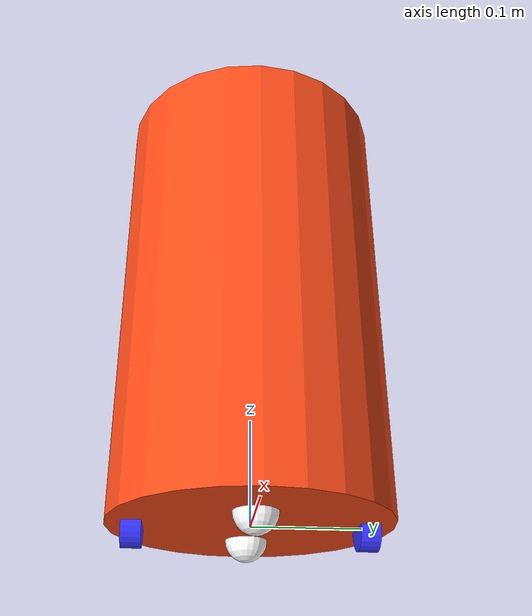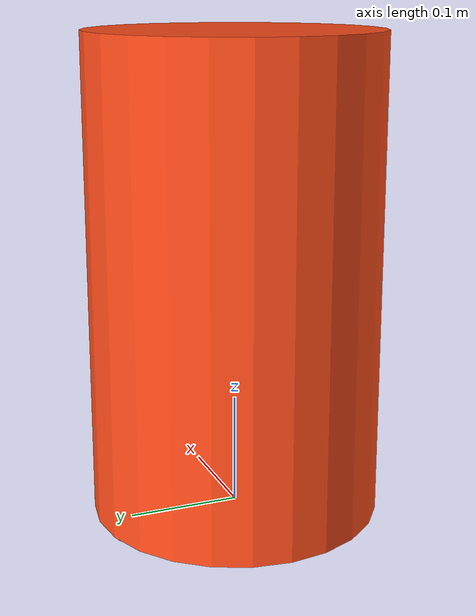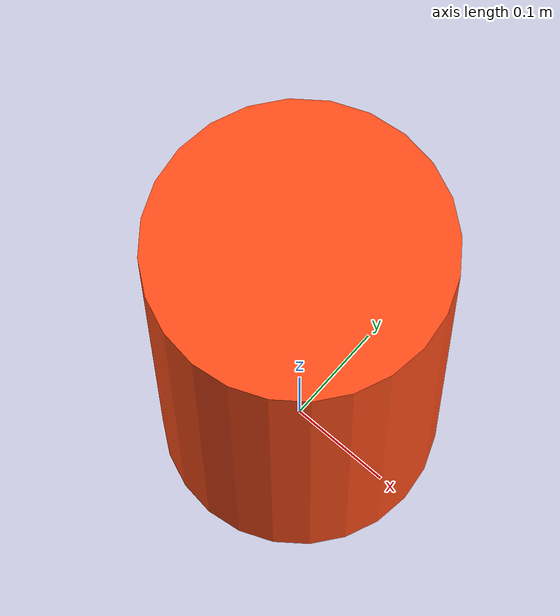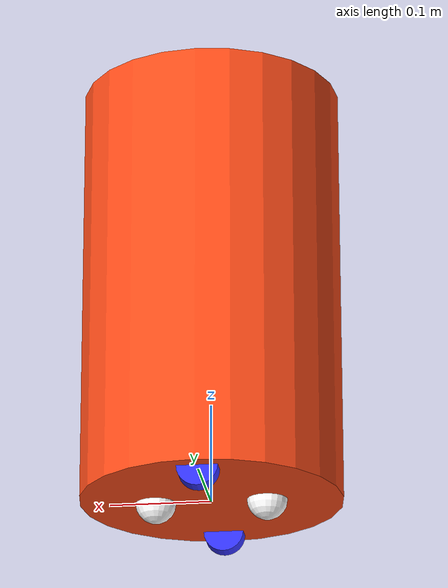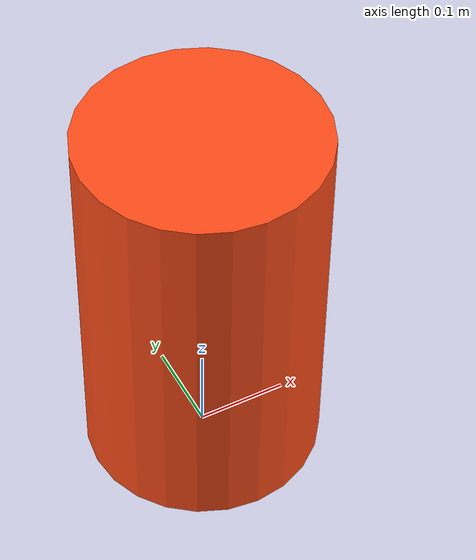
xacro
<?xml version="1.0"?>
<robot xmlns:xacro="http://www.ros.org/wiki/xacro">

    <xacro:include filename="inertial_macros.xacro"/>

    <xacro:property name="robot_height" value="0.43"/>
    <xacro:property name="robot_radius" value="0.13"/> <!-- Half of the diameter -->
    <xacro:property name="chassis_mass" value="4.178"/>
    <xacro:property name="wheel_distance" value="0.21"/> <!-- Distance between wheels -->

    <xacro:property name="wheel_radius" value="0.020"/> <!-- Wheel radius -->
    <xacro:property name="wheel_width" value="0.018"/> <!-- Wheel width -->
    <xacro:property name="wheel_mass" value="0.0194"/> <!-- Wheel mass -->

    <xacro:property name="chassis_wheel_radius" value="${wheel_radius}"/> <!-- Chassis wheel radius -->
    <xacro:property name="chassis_wheel_mass" value="0.01"/> <!-- Chassis wheel mass -->
    <xacro:property name="chassis_wheel_distance" value="0.11"/> <!-- Distance between chassis wheels -->
    <material name="white">
        <color rgba="1 1 1 1"/>
    </material>

    <material name="orange">
        <color rgba="1 0.3 0.1 1"/>
    </material>

    <material name="blue">
        <color rgba="0.2 0.2 1 1"/>
    </material>

    <material name="black">
        <color rgba="0 0 0 1"/>
    </material>

    <material name="red">
        <color rgba="1 0 0 1"/>
    </material>

    <!-- BASE LINK -->

    <link name="base_link">
    </link>

    <!-- BASE_FOOTPRINT LINK -->

    <joint name="base_footprint_joint" type="fixed">
        <parent link="base_link"/>
        <child link="base_footprint"/>
        <origin xyz="0 0 0" rpy="0 0 0"/>
    </joint>

    <link name="base_footprint">
    </link>

    <!-- CHASSIS LINK -->

    <joint name="chassis_joint" type="fixed">
        <parent link="base_link"/>
        <child link="chassis"/>
        <origin xyz="0 0 0"/>
    </joint>

    <link name="chassis">
        <visual>
            <origin xyz="0 0 ${robot_height/2}" rpy="0 0 0"/>
            <geometry>
                <cylinder radius="${robot_radius}" length="${robot_height}"/>
            </geometry>
            <material name="orange"/>
        </visual>
        <collision>
            <origin xyz="0 0 ${robot_height/2}" rpy="0 0 0"/>
            <geometry>
                <cylinder radius="${robot_radius}" length="${robot_height}"/>
            </geometry>
        </collision>
        <xacro:inertial_cylinder mass="${chassis_mass}" length="${robot_height}" radius="${robot_radius}">
            <origin xyz="0 0 ${robot_height/2}" rpy="0 0 0"/>
        </xacro:inertial_cylinder>
    </link>

    <!-- LEFT WHEEL LINK -->

    <joint name="left_wheel_joint" type="continuous">
        <parent link="base_link"/>
        <child link="left_wheel"/>
        <origin xyz="0 ${wheel_distance/2} 0" rpy="-${pi/2} 0 0"/>
        <axis xyz="0 0 1"/>
    </joint>

    <link name="left_wheel">
        <visual>
            <geometry>
                <cylinder radius="${wheel_radius}" length="${wheel_width}"/>
            </geometry>
            <material name="blue"/>
        </visual>
        <collision>
            <geometry>
                <cylinder radius="${wheel_radius}" length="${wheel_width}"/>
            </geometry>
        </collision>
        <xacro:inertial_cylinder mass="${wheel_mass}" length="${wheel_width}" radius="${wheel_radius}">
            <origin xyz="0 0 0" rpy="0 0 0"/>
        </xacro:inertial_cylinder>
    </link>

    <!-- RIGHT WHEEL LINK -->

    <joint name="right_wheel_joint" type="continuous">
        <parent link="base_link"/>
        <child link="right_wheel"/>
        <origin xyz="0 ${-wheel_distance/2} 0" rpy="${pi/2} 0 0" />
        <axis xyz="0 0 1"/>
    </joint>

    <link name="right_wheel">
        <visual>
            <geometry>
                <cylinder radius="${wheel_radius}" length="${wheel_width}"/>
            </geometry>
            <material name="blue"/>
        </visual>
        <collision>
            <geometry>
                <cylinder radius="${wheel_radius}" length="${wheel_width}"/>
            </geometry>
        </collision>
        <xacro:inertial_cylinder mass="${wheel_mass}" length="${wheel_width}" radius="${wheel_radius}">
            <origin xyz="0 0 0" rpy="0 0 0"/>
        </xacro:inertial_cylinder>
    </link>

    <!-- CHASSIS WHEELS -->

     <!-- FRONT CHASSIS WHEEL LINK -->

    <joint name="front_chassis_wheel_joint" type="fixed">
        <parent link="chassis"/>
        <child link="front_chassis_wheel"/>
        <origin xyz="${chassis_wheel_distance/2} 0 0"/>
    </joint>

    <link name="front_chassis_wheel">
        <visual>
            <origin xyz="0 0 0" rpy="0 0 0"/>
            <geometry>
                <sphere radius="${chassis_wheel_radius}"/>
            </geometry>
            <material name="white"/>
        </visual>
        <collision>
            <origin xyz="0 0 0" rpy="0 0 0"/>
            <geometry>
                <sphere radius="${chassis_wheel_radius}"/>
            </geometry>
        </collision>
        <xacro:inertial_sphere mass="${chassis_wheel_mass}" radius="${chassis_wheel_radius}">
            <origin xyz="0 0 0" rpy="0 0 0"/>
        </xacro:inertial_sphere>
    </link>

    <!-- BACK CHASSIS WHEEL LINK -->

    <joint name="back_chassis_wheel_joint" type="fixed">
        <parent link="chassis"/>
        <child link="back_chassis_wheel"/>
        <origin xyz="-${chassis_wheel_distance/2} 0 0"/>
    </joint>

    <link name="back_chassis_wheel">
        <visual>
            <origin xyz="0 0 0" rpy="0 0 0"/>
            <geometry>
                <sphere radius="${chassis_wheel_radius}"/>
            </geometry>
            <material name="white"/>
        </visual>
        <collision>
            <origin xyz="0 0 0" rpy="0 0 0"/>
            <geometry>
                <sphere radius="${chassis_wheel_radius}"/>
            </geometry>
        </collision>
        <xacro:inertial_sphere mass="${chassis_wheel_mass}" radius="${chassis_wheel_radius}">
            <origin xyz="0 0 0" rpy="0 0 0"/>
        </xacro:inertial_sphere>
    </link>
</robot>
